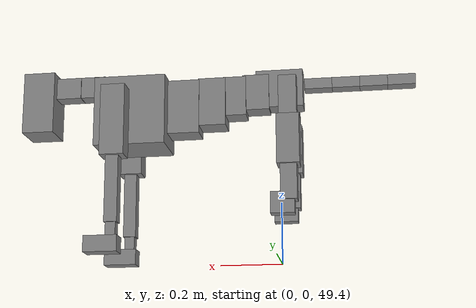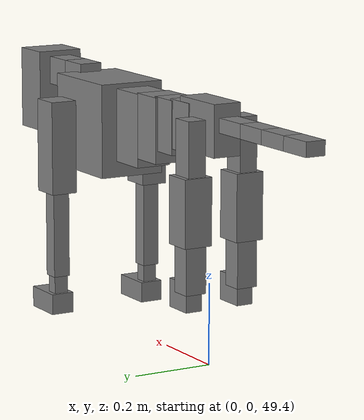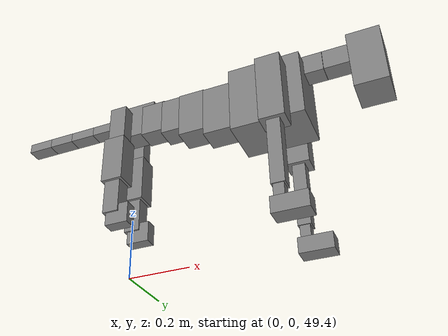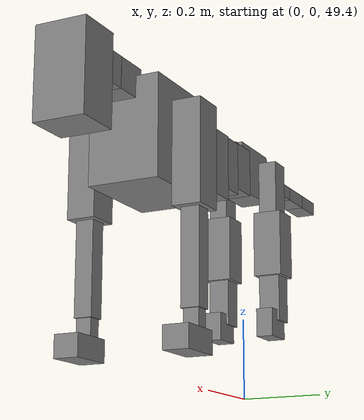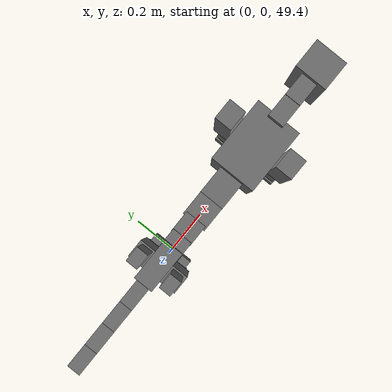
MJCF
<mujoco model="dog">

    <default>
        <joint armature="0.02" stiffness="1" damping="0.2" limited="true"/>
        <geom condim="3" friction="1 0.05 0.05" margin="0.01"/>
        <motor ctrllimited="true" ctrlrange="-1.0 1.0" forcelimited="true" gear="50"/>
    </default>

    <compiler inertiafromgeom="true" angle="radian"/>

    <option timestep="0.016" iterations="50" tolerance="1e-10" solver="Newton" jacobian="dense" cone="pyramidal"/>

    <size nconmax="20000" njmax="60000" nstack="5000000"/>
    <visual>
        <map force="0.1" zfar="30"/>
        <rgba haze="0.15 0.25 0.35 1"/>
        <quality shadowsize="2048"/>
        <global offwidth="800" offheight="800"/>
    </visual>

    <asset>
        <texture type="skybox" builtin="gradient" rgb1="0.3 0.5 0.7" rgb2="0 0 0" width="512" height="512"/>
        <texture name="texplane" type="2d" builtin="checker" rgb1=".2 .3 .4" rgb2=".1 0.15 0.2" width="512" height="512"
                 mark="cross" markrgb=".8 .8 .8"/>
        <texture name="texgeom" type="cube" builtin="flat" mark="cross" width="127" height="1278" rgb1="0.8 0.6 0.4"
                 rgb2="0.8 0.6 0.4" markrgb="1 1 1" random="0.01"/>

        <material name="matplane" reflectance="0.3" texture="texplane" texrepeat="1 1" texuniform="true"/>
        <material name="matgeom" texture="texgeom" texuniform="true" rgba="0.8 0.6 .4 1"/>
    </asset>

    <worldbody>
        <geom name="floor" pos="0 0 0" size="0 0 .25" type="plane" material="matplane" condim="3"/>

        <light directional="false" diffuse=".2 .2 .2" specular="0 0 0" pos="0 0 5" dir="0 0 -1" castshadow="false"/>
        <light mode="targetbodycom" target="torso" directional="false" diffuse=".8 .8 .8" specular="0.3 0.3 0.3"
               pos="0 0 4.0" dir="0 0 -1"/>

        <body name="root" pos="0 0 50">
            <freejoint name="root_1"/>
            <geom type="box" pos="0 0 -0.02" size="0.0774  0.0358  0.063" density="2030"/>

            <body name="spine1" pos="0.054 0 0">
                <joint name="spine1_y" axis="0 1 0" range="0 0.7" limited="true"/>
                <geom type="box" pos="0.02375 0 -0.03" size="0.04375  0.0375  0.05985" density="2030"/>

                <body name="spine2" pos="0.0612 0 0">
                    <joint name="spine2_y" axis="0 1 0" range="-0.15 0.15" limited="true"/>
                    <geom type="box" pos="0.03555  0  -0.04" size="0.04055  0.039  0.06615" density="2030"/>

                    <body name="spine3" pos="0.0730 0 0">
                        <joint name="spine3_y" axis="0 1 0" range="-0.15 0.15" limited="true"/>
                        <geom type="box" pos="0.03555  0  -0.057" size="0.04555  0.0445  0.081" density="2030"/>

                        <body name="spine4" pos="0.0780 0 0">
                            <joint name="spine4_y" axis="0 1 0" range="-0.15 0.15" limited="true"/>
                            <geom type="box" pos="0.05265  0  -0.07" size="0.05265  0.045  0.09135" density="2030"/>

                            <body name="torso" pos="0.1082 0 0">
                                <joint name="torso_y" axis="0 1 0" range="-0.15 0.15" limited="true"/>
                                <geom type="box" pos="0.11925  0  -0.085" size="0.11925  0.085  0.11745"
                                      density="2030"/>

                                <body name="neck1" pos="0.2160  0   0.0180">
                                    <joint name="neck1_y" axis="0 1 0" range="-1.2  -1" limited="true"/>
                                    <geom type="box" pos="0.0423  0  0" size="0.0423  0.03  0.036" density="2325"/>

                                    <body name="neck2" pos="0.0853  0  0">
                                        <joint name="neck2_y" axis="0 1 0" range="0.1  0" limited="true"/>
                                        <geom type="box" pos="0.0423  0  0" size="0.0423  0.03  0.036" density="2325"/>

                                        <body name="head" pos="0.0853  0  0">
                                            <joint name="head_y" axis="0 1 0" range="-0.3  -0.2" limited="true"/>
                                            <geom type="box" pos="0.0531  0  -0.055" size="0.0531  0.06  0.1044"
                                                  density="4030"/>

                                        </body>
                                    </body>
                                </body>

                                <body name="front_shoulder" pos="0.156  0   -0.0480">
                                    <joint name="front_shoulder_y" axis="0 1 0" range="-1 1.5" limited="true"/>
                                    <geom type="box" pos="0 0.13 -0.0911" size="0.0397  0.0339  0.1178" density="1158"/>
                                    <geom type="box" pos="0 -0.13 -0.0911" size="0.0397  0.0339  0.1178"
                                          density="1158"/>

                                    <body name="front_elbow" pos="0  0  -0.1823">
                                        <joint name="front_elbow_y" axis="0 1 0" range="-2 0" limited="true"/>
                                        <geom type="box" pos="0 0.13 -0.1220" size="0.0211  0.0216  0.1220"
                                              density="1081"/>
                                        <geom type="box" pos="0 -0.13 -0.1220" size="0.0211  0.0216  0.1220"
                                              density="1081"/>

                                        <body name="front_wrist" pos="0  0  -0.2439">
                                            <joint name="front_wrist_y" axis="0 1 0" range="-0.2 0" limited="true"/>
                                            <geom type="box" pos="0 0.13 -0.0295" size="0.0163  0.0181  0.0427"
                                                  density="1664"/>
                                            <geom type="box" pos="0 -0.13 -0.0295" size="0.0163  0.0181  0.0427"
                                                  density="1664"/>

                                            <body name="front_finger_end" pos="0  0  -0.0590">
                                                <joint name="front_finger_y" axis="0 1 0" range="-0.4 1"
                                                       limited="true"/>
                                                <geom type="box" pos="0.0297  0.13  -0.0111"
                                                      size="0.0544  0.0297  0.0261" density="1515"/>
                                                <geom type="box" pos="0.0297  -0.13  -0.0111"
                                                      size="0.0544  0.0297  0.0261" density="1515"/>

                                            </body>

                                        </body>
                                    </body>
                                </body>

                            </body>
                        </body>
                    </body>
                </body>
            </body>

            <body name="back_hip" pos="-0.03 0 -0.018">
                <joint name="back_hip_y" axis="0 1 0" range="-1.5 0.3" limited="true"/>
                <geom type="box" pos="0 0.07 -0.0629" size="0.0293  0.0230  0.0857" density="1154"/>
                <geom type="box" pos="0 -0.07 -0.0629" size="0.0293  0.0230  0.0857" density="1154"/>

                <body name="back_knee" pos="0  0  -0.1259">
                    <joint name="back_knee_y" axis="0 1 0" range="0 2.8" limited="true"/>
                    <geom type="box" pos="0 0.07 -0.0665" size="0.0366  0.0360  0.0820" density="1227"/>
                    <geom type="box" pos="0 -0.07 -0.0665" size="0.0366  0.0360  0.0820" density="1227"/>

                    <body name="back_ankle" pos="0  0  -0.1330">
                        <joint name="back_ankle_y" axis="0 1 0" range="-2.2 0" limited="true"/>
                        <geom type="box" pos="0 0.07 -0.0596" size="0.0267  0.0267  0.0709" density="1284"/>
                        <geom type="box" pos="0 -0.07 -0.0596" size="0.0267  0.0267  0.0709" density="1284"/>

                        <body name="back_toe_end" pos="0  0  -0.1192">
                            <joint name="back_toe_y" axis="0 1 0" range="-0.4 1" limited="true"/>
                            <geom type="box" pos="0.0210  0.07  -0.0199" size="0.0385  0.0210  0.0349" density="1515"/>
                            <geom type="box" pos="0.0210  -0.07  -0.0199" size="0.0385  0.0210  0.0349" density="1515"/>

                        </body>
                    </body>
                </body>
            </body>

            <body name="tail1" pos="-0.074 0 -0.006">
                <joint name="tail1_y" axis="0 1 0" range="-0.2 0.2" limited="true"/>
                <geom type="box" pos="-0.0536  0  0" size="0.045  0.025  0.0175" density="1587"/>

                <body name="tail2" pos="-0.09 0 0">
                    <joint name="tail2_y" axis="0 1 0" range="-0.2 0.2" limited="true"/>
                    <geom type="box" pos="-0.0536  0  0" size="0.045  0.025  0.0175" density="1587"/>

                    <body name="tail3" pos="-0.09 0 0">
                        <joint name="tail3_y" axis="0 1 0" range="-0.2 0.2" limited="true"/>
                        <geom type="box" pos="-0.0536  0  0" size="0.045  0.025  0.0175" density="1587"/>

                        <body name="tail4" pos="-0.09 0 0">
                            <joint name="tail4_y" axis="0 1 0" range="-0.2 0.2" limited="true"/>
                            <geom type="box" pos="-0.0536  0  0" size="0.045  0.025  0.0175" density="1587"/>

                        </body>
                    </body>
                </body>
            </body>
        </body>
    </worldbody>

    <actuator>
        <motor joint="spine1_y" forcerange="-150 150     "/>
        <motor joint="spine2_y" forcerange="-150 150     "/>
        <motor joint="spine3_y" forcerange="-150 150     "/>
        <motor joint="spine4_y" forcerange="-150 150     "/>
        <motor joint="torso_y" forcerange="-150 150     "/>
        <motor joint="neck1_y" forcerange="-100 100       "/>
        <motor joint="neck2_y" forcerange="-100 100       "/>
        <motor joint="head_y" forcerange="-150 150       "/>
        <motor joint="front_shoulder_y" forcerange="-162.60 163.39"/>
        <motor joint="front_elbow_y" forcerange="-119.00 137.79"/>
        <motor joint="front_wrist_y" forcerange="-93.71 51.06"/>
        <motor joint="front_finger_y" forcerange="-49.98 68.20"/>
        <motor joint="back_hip_y" forcerange="-222.68 283.37"/>
        <motor joint="back_knee_y" forcerange="-362.91 361.29"/>
        <motor joint="back_angle_y" forcerange="-183.50 144.24"/>
        <motor joint="back_toe_y" forcerange="-42.06 45.89"/>
        <motor joint="tail1_y" forcerange="-50 50     "/>
        <motor joint="tail2_y" forcerange="-50 50     "/>
        <motor joint="tail3_y" forcerange="-50 50     "/>
        <motor joint="tail4_y" forcerange="-50 50     "/>
    </actuator>
</mujoco>
